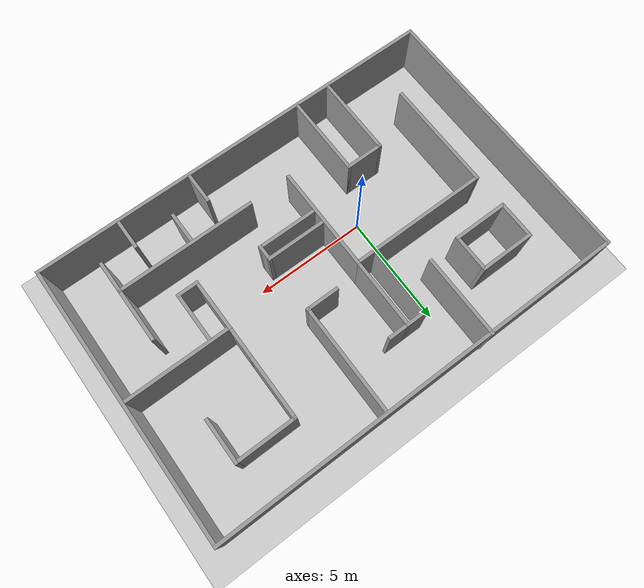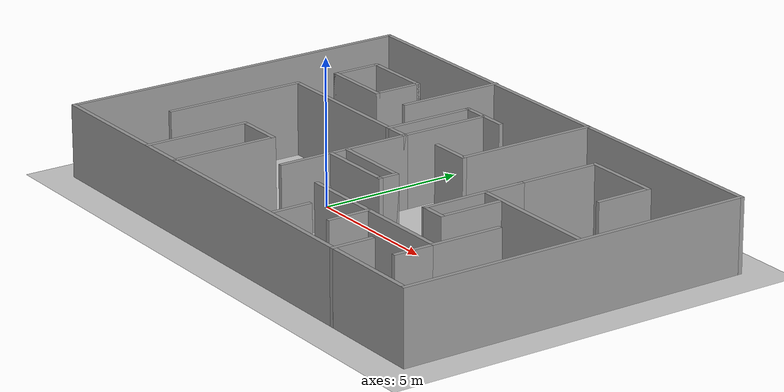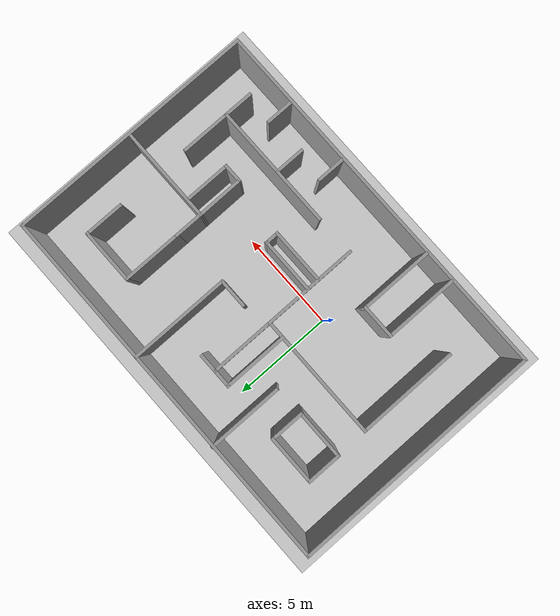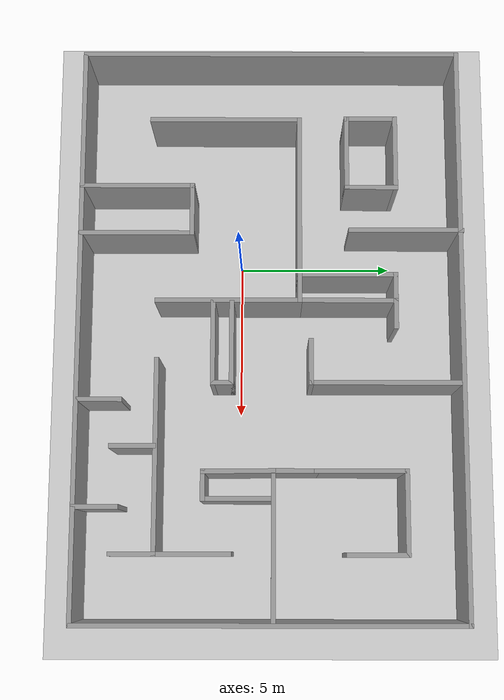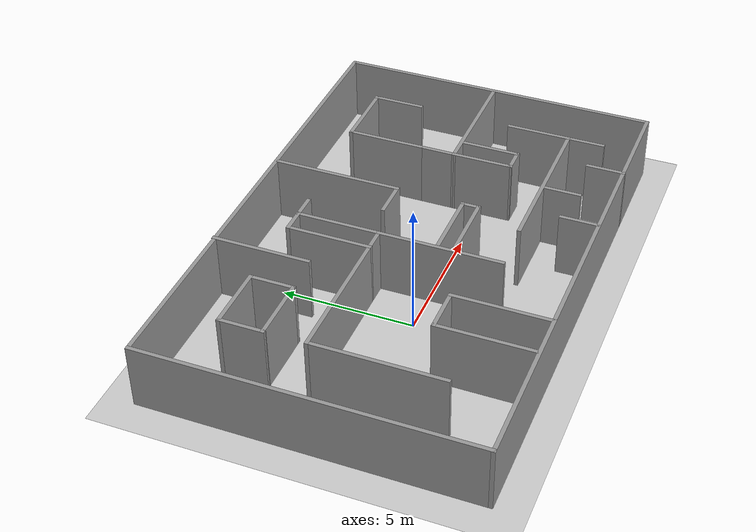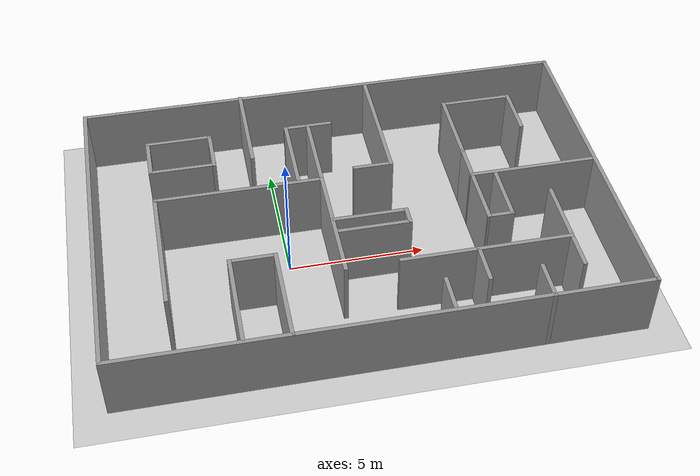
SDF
<?xml version="1.0" ?>
<sdf version="1.4">
    <world name="default">
        <include>
            <uri>model://ground_plane</uri>
        </include>
        <include>
            <uri>model://sun</uri>
        </include>
        <include>
            <uri>file://map/model.sdf</uri>
        </include>
    </world>
</sdf>

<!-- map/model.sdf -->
<sdf version='1.6'>
  <model name='map'>
    <pose frame=''>2.46667 0.989916 0 0 -0 0</pose>
    <link name='Wall_100'>
      <collision name='Wall_100_Collision'>
        <geometry>
          <box>
            <size>4.75 0.15 2.5</size>
          </box>
        </geometry>
        <pose frame=''>0 0 1.25 0 -0 0</pose>
      </collision>
      <visual name='Wall_100_Visual'>
        <pose frame=''>0 0 1.25 0 -0 0</pose>
        <geometry>
          <box>
            <size>4.75 0.15 2.5</size>
          </box>
        </geometry>
        <material>
          <script>
            <uri>file://media/materials/scripts/gazebo.material</uri>
            <name>Gazebo/Grey</name>
          </script>
          <ambient>1 1 1 1</ambient>
        </material>
        <meta>
          <layer>0</layer>
        </meta>
      </visual>
      <pose frame=''>-0.90775 -1.37557 0 0 -0 -1.5708</pose>
    </link>
    <link name='Wall_104'>
      <collision name='Wall_104_Collision'>
        <geometry>
          <box>
            <size>5 0.15 2.5</size>
          </box>
        </geometry>
        <pose frame=''>0 0 1.25 0 -0 0</pose>
      </collision>
      <visual name='Wall_104_Visual'>
        <pose frame=''>0 0 1.25 0 -0 0</pose>
        <geometry>
          <box>
            <size>5 0.15 2.5</size>
          </box>
        </geometry>
        <material>
          <script>
            <uri>file://media/materials/scripts/gazebo.material</uri>
            <name>Gazebo/Grey</name>
          </script>
          <ambient>1 1 1 1</ambient>
        </material>
        <meta>
          <layer>0</layer>
        </meta>
      </visual>
      <pose frame=''>-7.00775 -1.50057 0 0 -0 -1.5708</pose>
    </link>
    <link name='Wall_106'>
      <collision name='Wall_106_Collision'>
        <geometry>
          <box>
            <size>3.75 0.15 2.5</size>
          </box>
        </geometry>
        <pose frame=''>0 0 1.25 0 -0 0</pose>
      </collision>
      <visual name='Wall_106_Visual'>
        <pose frame=''>0 0 1.25 0 -0 0</pose>
        <geometry>
          <box>
            <size>3.75 0.15 2.5</size>
          </box>
        </geometry>
        <material>
          <script>
            <uri>file://media/materials/scripts/gazebo.material</uri>
            <name>Gazebo/Grey</name>
          </script>
          <ambient>1 1 1 1</ambient>
        </material>
        <meta>
          <layer>0</layer>
        </meta>
      </visual>
      <pose frame=''>-4.74227 -4.37831 0 0 -0 1.5708</pose>
    </link>
    <link name='Wall_107'>
      <collision name='Wall_107_Collision'>
        <geometry>
          <box>
            <size>1.75 0.15 2.5</size>
          </box>
        </geometry>
        <pose frame=''>0 0 1.25 0 -0 0</pose>
      </collision>
      <visual name='Wall_107_Visual'>
        <pose frame=''>0 0 1.25 0 -0 0</pose>
        <geometry>
          <box>
            <size>1.75 0.15 2.5</size>
          </box>
        </geometry>
        <material>
          <script>
            <uri>file://media/materials/scripts/gazebo.material</uri>
            <name>Gazebo/Grey</name>
          </script>
          <ambient>1 1 1 1</ambient>
        </material>
        <meta>
          <layer>0</layer>
        </meta>
      </visual>
      <pose frame=''>-3.94227 -2.57831 0 0 -0 0</pose>
    </link>
    <link name='Wall_108'>
      <collision name='Wall_108_Collision'>
        <geometry>
          <box>
            <size>3.75 0.15 2.5</size>
          </box>
        </geometry>
        <pose frame=''>0 0 1.25 0 -0 0</pose>
      </collision>
      <visual name='Wall_108_Visual'>
        <pose frame=''>0 0 1.25 0 -0 0</pose>
        <geometry>
          <box>
            <size>3.75 0.15 2.5</size>
          </box>
        </geometry>
        <material>
          <script>
            <uri>file://media/materials/scripts/gazebo.material</uri>
            <name>Gazebo/Grey</name>
          </script>
          <ambient>1 1 1 1</ambient>
        </material>
        <meta>
          <layer>0</layer>
        </meta>
      </visual>
      <pose frame=''>-3.14227 -4.37831 0 0 -0 -1.5708</pose>
    </link>
    <link name='Wall_110'>
      <collision name='Wall_110_Collision'>
        <geometry>
          <box>
            <size>6.25 0.15 2.5</size>
          </box>
        </geometry>
        <pose frame=''>0 0 1.25 0 -0 0</pose>
      </collision>
      <visual name='Wall_110_Visual'>
        <pose frame=''>0 0 1.25 0 -0 0</pose>
        <geometry>
          <box>
            <size>6.25 0.15 2.5</size>
          </box>
        </geometry>
        <material>
          <script>
            <uri>file://media/materials/scripts/gazebo.material</uri>
            <name>Gazebo/Grey</name>
          </script>
          <ambient>1 1 1 1</ambient>
        </material>
        <meta>
          <layer>0</layer>
        </meta>
      </visual>
      <pose frame=''>4.08628 -3.64881 0 0 -0 0</pose>
    </link>
    <link name='Wall_111'>
      <collision name='Wall_111_Collision'>
        <geometry>
          <box>
            <size>2.5 0.15 2.5</size>
          </box>
        </geometry>
        <pose frame=''>0 0 1.25 0 -0 0</pose>
      </collision>
      <visual name='Wall_111_Visual'>
        <pose frame=''>0 0 1.25 0 -0 0</pose>
        <geometry>
          <box>
            <size>2.5 0.15 2.5</size>
          </box>
        </geometry>
        <material>
          <script>
            <uri>file://media/materials/scripts/gazebo.material</uri>
            <name>Gazebo/Grey</name>
          </script>
          <ambient>1 1 1 1</ambient>
        </material>
        <meta>
          <layer>0</layer>
        </meta>
      </visual>
      <pose frame=''>7.13628 -2.47381 0 0 -0 1.5708</pose>
    </link>
    <link name='Wall_114'>
      <collision name='Wall_114_Collision'>
        <geometry>
          <box>
            <size>2.75 0.15 2.5</size>
          </box>
        </geometry>
        <pose frame=''>0 0 1.25 0 -0 0</pose>
      </collision>
      <visual name='Wall_114_Visual'>
        <pose frame=''>0 0 1.25 0 -0 0</pose>
        <geometry>
          <box>
            <size>2.75 0.15 2.5</size>
          </box>
        </geometry>
        <material>
          <script>
            <uri>file://media/materials/scripts/gazebo.material</uri>
            <name>Gazebo/Grey</name>
          </script>
          <ambient>1 1 1 1</ambient>
        </material>
        <meta>
          <layer>0</layer>
        </meta>
      </visual>
      <pose frame=''>5.8629 4.28354 0 0 -0 3.14159</pose>
    </link>
    <link name='Wall_115'>
      <collision name='Wall_115_Collision'>
        <geometry>
          <box>
            <size>3 0.15 2.5</size>
          </box>
        </geometry>
        <pose frame=''>0 0 1.25 0 -0 0</pose>
      </collision>
      <visual name='Wall_115_Visual'>
        <pose frame=''>0 0 1.25 0 -0 0</pose>
        <geometry>
          <box>
            <size>3 0.15 2.5</size>
          </box>
        </geometry>
        <material>
          <script>
            <uri>file://media/materials/scripts/gazebo.material</uri>
            <name>Gazebo/Grey</name>
          </script>
          <ambient>1 1 1 1</ambient>
        </material>
        <meta>
          <layer>0</layer>
        </meta>
      </visual>
      <pose frame=''>4.5629 2.85854 0 0 -0 -1.5708</pose>
    </link>
    <link name='Wall_120'>
      <collision name='Wall_120_Collision'>
        <geometry>
          <box>
            <size>5 0.15 2.5</size>
          </box>
        </geometry>
        <pose frame=''>0 0 1.25 0 -0 0</pose>
      </collision>
      <visual name='Wall_120_Visual'>
        <pose frame=''>0 0 1.25 0 -0 0</pose>
        <geometry>
          <box>
            <size>5 0.15 2.5</size>
          </box>
        </geometry>
        <material>
          <script>
            <uri>file://media/materials/scripts/gazebo.material</uri>
            <name>Gazebo/Grey</name>
          </script>
          <ambient>1 1 1 1</ambient>
        </material>
        <meta>
          <layer>0</layer>
        </meta>
      </visual>
      <pose frame=''>1.76613 3.70746 0 0 -0 -1.5708</pose>
    </link>
    <link name='Wall_122'>
      <collision name='Wall_122_Collision'>
        <geometry>
          <box>
            <size>3.25 0.15 2.5</size>
          </box>
        </geometry>
        <pose frame=''>0 0 1.25 0 -0 0</pose>
      </collision>
      <visual name='Wall_122_Visual'>
        <pose frame=''>0 0 1.25 0 -0 0</pose>
        <geometry>
          <box>
            <size>3.25 0.15 2.5</size>
          </box>
        </geometry>
        <material>
          <script>
            <uri>file://media/materials/scripts/gazebo.material</uri>
            <name>Gazebo/Grey</name>
          </script>
          <ambient>1 1 1 1</ambient>
        </material>
        <meta>
          <layer>0</layer>
        </meta>
      </visual>
      <pose frame=''>-0.90775 2.47443 0 0 -0 1.5708</pose>
    </link>
    <link name='Wall_123'>
      <collision name='Wall_123_Collision'>
        <geometry>
          <box>
            <size>1 0.15 2.5</size>
          </box>
        </geometry>
        <pose frame=''>0 0 1.25 0 -0 0</pose>
      </collision>
      <visual name='Wall_123_Visual'>
        <pose frame=''>0 0 1.25 0 -0 0</pose>
        <geometry>
          <box>
            <size>1 0.15 2.5</size>
          </box>
        </geometry>
        <material>
          <script>
            <uri>file://media/materials/scripts/gazebo.material</uri>
            <name>Gazebo/Grey</name>
          </script>
          <ambient>1 1 1 1</ambient>
        </material>
        <meta>
          <layer>0</layer>
        </meta>
      </visual>
      <pose frame=''>-1.33275 4.02443 0 0 -0 3.14159</pose>
    </link>
    <link name='Wall_124'>
      <collision name='Wall_124_Collision'>
        <geometry>
          <box>
            <size>3.25 0.15 2.5</size>
          </box>
        </geometry>
        <pose frame=''>0 0 1.25 0 -0 0</pose>
      </collision>
      <visual name='Wall_124_Visual'>
        <pose frame=''>0 0 1.25 0 -0 0</pose>
        <geometry>
          <box>
            <size>3.25 0.15 2.5</size>
          </box>
        </geometry>
        <material>
          <script>
            <uri>file://media/materials/scripts/gazebo.material</uri>
            <name>Gazebo/Grey</name>
          </script>
          <ambient>1 1 1 1</ambient>
        </material>
        <meta>
          <layer>0</layer>
        </meta>
      </visual>
      <pose frame=''>-1.75775 2.47443 0 0 -0 -1.5708</pose>
    </link>
    <link name='Wall_126'>
      <collision name='Wall_126_Collision'>
        <geometry>
          <box>
            <size>1.5 0.15 2.5</size>
          </box>
        </geometry>
        <pose frame=''>0 0 1.25 0 -0 0</pose>
      </collision>
      <visual name='Wall_126_Visual'>
        <pose frame=''>0 0 1.25 0 -0 0</pose>
        <geometry>
          <box>
            <size>1.5 0.15 2.5</size>
          </box>
        </geometry>
        <material>
          <script>
            <uri>file://media/materials/scripts/gazebo.material</uri>
            <name>Gazebo/Grey</name>
          </script>
          <ambient>1 1 1 1</ambient>
        </material>
        <meta>
          <layer>0</layer>
        </meta>
      </visual>
      <pose frame=''>2.30682 -5.484 0 0 -0 1.5708</pose>
    </link>
    <link name='Wall_129'>
      <collision name='Wall_129_Collision'>
        <geometry>
          <box>
            <size>1.5 0.15 2.5</size>
          </box>
        </geometry>
        <pose frame=''>0 0 1.25 0 -0 0</pose>
      </collision>
      <visual name='Wall_129_Visual'>
        <pose frame=''>0 0 1.25 0 -0 0</pose>
        <geometry>
          <box>
            <size>1.5 0.15 2.5</size>
          </box>
        </geometry>
        <material>
          <script>
            <uri>file://media/materials/scripts/gazebo.material</uri>
            <name>Gazebo/Grey</name>
          </script>
          <ambient>1 1 1 1</ambient>
        </material>
        <meta>
          <layer>0</layer>
        </meta>
      </visual>
      <pose frame=''>7.13628 -4.32381 0 0 -0 -1.5708</pose>
    </link>
    <link name='Wall_131'>
      <collision name='Wall_131_Collision'>
        <geometry>
          <box>
            <size>1.5 0.15 2.5</size>
          </box>
        </geometry>
        <pose frame=''>0 0 1.25 0 -0 0</pose>
      </collision>
      <visual name='Wall_131_Visual'>
        <pose frame=''>0 0 1.25 0 -0 0</pose>
        <geometry>
          <box>
            <size>1.5 0.15 2.5</size>
          </box>
        </geometry>
        <material>
          <script>
            <uri>file://media/materials/scripts/gazebo.material</uri>
            <name>Gazebo/Grey</name>
          </script>
          <ambient>1 1 1 1</ambient>
        </material>
        <meta>
          <layer>0</layer>
        </meta>
      </visual>
      <pose frame=''>3.78432 -4.37149 0 0 -0 -1.5708</pose>
    </link>
    <link name='Wall_133'>
      <collision name='Wall_133_Collision'>
        <geometry>
          <box>
            <size>1.5 0.15 2.5</size>
          </box>
        </geometry>
        <pose frame=''>0 0 1.25 0 -0 0</pose>
      </collision>
      <visual name='Wall_133_Visual'>
        <pose frame=''>0 0 1.25 0 -0 0</pose>
        <geometry>
          <box>
            <size>1.5 0.15 2.5</size>
          </box>
        </geometry>
        <material>
          <script>
            <uri>file://media/materials/scripts/gazebo.material</uri>
            <name>Gazebo/Grey</name>
          </script>
          <ambient>1 1 1 1</ambient>
        </material>
        <meta>
          <layer>0</layer>
        </meta>
      </visual>
      <pose frame=''>5.68398 -5.51918 0 0 -0 1.5708</pose>
    </link>
    <link name='Wall_135'>
      <collision name='Wall_135_Collision'>
        <geometry>
          <box>
            <size>3.75 0.15 2.5</size>
          </box>
        </geometry>
        <pose frame=''>0 0 1.25 0 -0 0</pose>
      </collision>
      <visual name='Wall_135_Visual'>
        <pose frame=''>0 0 1.25 0 -0 0</pose>
        <geometry>
          <box>
            <size>3.75 0.15 2.5</size>
          </box>
        </geometry>
        <material>
          <script>
            <uri>file://media/materials/scripts/gazebo.material</uri>
            <name>Gazebo/Grey</name>
          </script>
          <ambient>1 1 1 1</ambient>
        </material>
        <meta>
          <layer>0</layer>
        </meta>
      </visual>
      <pose frame=''>-3.24065 4.39418 0 0 -0 -1.5708</pose>
    </link>
    <link name='Wall_137'>
      <collision name='Wall_137_Collision'>
        <geometry>
          <box>
            <size>1 0.15 2.5</size>
          </box>
        </geometry>
        <pose frame=''>0 0 1.25 0 -0 0</pose>
      </collision>
      <visual name='Wall_137_Visual'>
        <pose frame=''>0 0 1.25 0 -0 0</pose>
        <geometry>
          <box>
            <size>1 0.15 2.5</size>
          </box>
        </geometry>
        <material>
          <script>
            <uri>file://media/materials/scripts/gazebo.material</uri>
            <name>Gazebo/Grey</name>
          </script>
          <ambient>1 1 1 1</ambient>
        </material>
        <meta>
          <layer>0</layer>
        </meta>
      </visual>
      <pose frame=''>-0.48275 4.02443 0 0 -0 0</pose>
    </link>
    <link name='Wall_139'>
      <collision name='Wall_139_Collision'>
        <geometry>
          <box>
            <size>1.5 0.15 2.5</size>
          </box>
        </geometry>
        <pose frame=''>0 0 1.25 0 -0 0</pose>
      </collision>
      <visual name='Wall_139_Visual'>
        <pose frame=''>0 0 1.25 0 -0 0</pose>
        <geometry>
          <box>
            <size>1.5 0.15 2.5</size>
          </box>
        </geometry>
        <material>
          <script>
            <uri>file://media/materials/scripts/gazebo.material</uri>
            <name>Gazebo/Grey</name>
          </script>
          <ambient>1 1 1 1</ambient>
        </material>
        <meta>
          <layer>0</layer>
        </meta>
      </visual>
      <pose frame=''>1.09113 1.28246 0 0 -0 3.14159</pose>
    </link>
    <link name='Wall_150'>
      <collision name='Wall_150_Collision'>
        <geometry>
          <box>
            <size>1 0.15 2.5</size>
          </box>
        </geometry>
        <pose frame=''>0 0 1.25 0 -0 0</pose>
      </collision>
      <visual name='Wall_150_Visual'>
        <pose frame=''>0 0 1.25 0 -0 0</pose>
        <geometry>
          <box>
            <size>1 0.15 2.5</size>
          </box>
        </geometry>
        <material>
          <script>
            <uri>file://media/materials/scripts/gazebo.material</uri>
            <name>Gazebo/Grey</name>
          </script>
          <ambient>1 1 1 1</ambient>
        </material>
        <meta>
          <layer>0</layer>
        </meta>
      </visual>
      <pose frame=''>5.00437 -2.14348 0 0 -0 3.14159</pose>
    </link>
    <link name='Wall_153'>
      <collision name='Wall_153_Collision'>
        <geometry>
          <box>
            <size>0.75 0.15 2.5</size>
          </box>
        </geometry>
        <pose frame=''>0 0 1.25 0 -0 0</pose>
      </collision>
      <visual name='Wall_153_Visual'>
        <pose frame=''>0 0 1.25 0 -0 0</pose>
        <geometry>
          <box>
            <size>0.75 0.15 2.5</size>
          </box>
        </geometry>
        <material>
          <script>
            <uri>file://media/materials/scripts/gazebo.material</uri>
            <name>Gazebo/Grey</name>
          </script>
          <ambient>1 1 1 1</ambient>
        </material>
        <meta>
          <layer>0</layer>
        </meta>
      </visual>
      <pose frame=''>1.76507 -1.56289 0 0 -0 -1.5708</pose>
    </link>
    <link name='Wall_154'>
      <collision name='Wall_154_Collision'>
        <geometry>
          <box>
            <size>2.75 0.15 2.5</size>
          </box>
        </geometry>
        <pose frame=''>0 0 1.25 0 -0 0</pose>
      </collision>
      <visual name='Wall_154_Visual'>
        <pose frame=''>0 0 1.25 0 -0 0</pose>
        <geometry>
          <box>
            <size>2.75 0.15 2.5</size>
          </box>
        </geometry>
        <material>
          <script>
            <uri>file://media/materials/scripts/gazebo.material</uri>
            <name>Gazebo/Grey</name>
          </script>
          <ambient>1 1 1 1</ambient>
        </material>
        <meta>
          <layer>0</layer>
        </meta>
      </visual>
      <pose frame=''>0.465071 -1.86289 0 0 -0 3.14159</pose>
    </link>
    <link name='Wall_156'>
      <collision name='Wall_156_Collision'>
        <geometry>
          <box>
            <size>2.75 0.15 2.5</size>
          </box>
        </geometry>
        <pose frame=''>0 0 1.25 0 -0 0</pose>
      </collision>
      <visual name='Wall_156_Visual'>
        <pose frame=''>0 0 1.25 0 -0 0</pose>
        <geometry>
          <box>
            <size>2.75 0.15 2.5</size>
          </box>
        </geometry>
        <material>
          <script>
            <uri>file://media/materials/scripts/gazebo.material</uri>
            <name>Gazebo/Grey</name>
          </script>
          <ambient>1 1 1 1</ambient>
        </material>
        <meta>
          <layer>0</layer>
        </meta>
      </visual>
      <pose frame=''>0.465071 -1.26289 0 0 -0 3.14159</pose>
    </link>
    <link name='Wall_162'>
      <collision name='Wall_162_Collision'>
        <geometry>
          <box>
            <size>1.5 0.15 2.5</size>
          </box>
        </geometry>
        <pose frame=''>0 0 1.25 0 -0 0</pose>
      </collision>
      <visual name='Wall_162_Visual'>
        <pose frame=''>0 0 1.25 0 -0 0</pose>
        <geometry>
          <box>
            <size>1.5 0.15 2.5</size>
          </box>
        </geometry>
        <material>
          <script>
            <uri>file://media/materials/scripts/gazebo.material</uri>
            <name>Gazebo/Grey</name>
          </script>
          <ambient>1 1 1 1</ambient>
        </material>
        <meta>
          <layer>0</layer>
        </meta>
      </visual>
      <pose frame=''>4.5629 0.758543 0 0 -0 -1.5708</pose>
    </link>
    <link name='Wall_163'>
      <collision name='Wall_163_Collision'>
        <geometry>
          <box>
            <size>4.75 0.15 2.5</size>
          </box>
        </geometry>
        <pose frame=''>0 0 1.25 0 -0 0</pose>
      </collision>
      <visual name='Wall_163_Visual'>
        <pose frame=''>0 0 1.25 0 -0 0</pose>
        <geometry>
          <box>
            <size>4.75 0.15 2.5</size>
          </box>
        </geometry>
        <material>
          <script>
            <uri>file://media/materials/scripts/gazebo.material</uri>
            <name>Gazebo/Grey</name>
          </script>
          <ambient>1 1 1 1</ambient>
        </material>
        <meta>
          <layer>0</layer>
        </meta>
      </visual>
      <pose frame=''>6.8629 0.083543 0 0 -0 0</pose>
    </link>
    <link name='Wall_165'>
      <collision name='Wall_165_Collision'>
        <geometry>
          <box>
            <size>2 0.15 2.5</size>
          </box>
        </geometry>
        <pose frame=''>0 0 1.25 0 -0 0</pose>
      </collision>
      <visual name='Wall_165_Visual'>
        <pose frame=''>0 0 1.25 0 -0 0</pose>
        <geometry>
          <box>
            <size>2 0.15 2.5</size>
          </box>
        </geometry>
        <material>
          <script>
            <uri>file://media/materials/scripts/gazebo.material</uri>
            <name>Gazebo/Grey</name>
          </script>
          <ambient>1 1 1 1</ambient>
        </material>
        <meta>
          <layer>0</layer>
        </meta>
      </visual>
      <pose frame=''>7.1629 3.35854 0 0 -0 -1.5708</pose>
    </link>
    <link name='Wall_167'>
      <collision name='Wall_167_Collision'>
        <geometry>
          <box>
            <size>2.37709 0.15 2.5</size>
          </box>
        </geometry>
        <pose frame=''>0 0 1.25 0 -0 0</pose>
      </collision>
      <visual name='Wall_167_Visual'>
        <pose frame=''>0 0 1.25 0 -0 0</pose>
        <geometry>
          <box>
            <size>2.37709 0.15 2.5</size>
          </box>
        </geometry>
        <material>
          <script>
            <uri>file://media/materials/scripts/gazebo.material</uri>
            <name>Gazebo/Grey</name>
          </script>
          <ambient>1 1 1 1</ambient>
        </material>
        <meta>
          <layer>0</layer>
        </meta>
      </visual>
      <pose frame=''>4.57114 -1.02997 0 0 -0 1.57819</pose>
    </link>
    <link name='Wall_169'>
      <collision name='Wall_169_Collision'>
        <geometry>
          <box>
            <size>2.25 0.15 2.5</size>
          </box>
        </geometry>
        <pose frame=''>0 0 1.25 0 -0 0</pose>
      </collision>
      <visual name='Wall_169_Visual'>
        <pose frame=''>0 0 1.25 0 -0 0</pose>
        <geometry>
          <box>
            <size>2.25 0.15 2.5</size>
          </box>
        </geometry>
        <material>
          <script>
            <uri>file://media/materials/scripts/gazebo.material</uri>
            <name>Gazebo/Grey</name>
          </script>
          <ambient>1 1 1 1</ambient>
        </material>
        <meta>
          <layer>0</layer>
        </meta>
      </visual>
      <pose frame=''>5.42937 -1.09348 0 0 -0 1.5708</pose>
    </link>
    <link name='Wall_86'>
      <collision name='Wall_86_Collision'>
        <geometry>
          <box>
            <size>12.5 0.15 2.5</size>
          </box>
        </geometry>
        <pose frame=''>0 0 1.25 0 -0 0</pose>
      </collision>
      <visual name='Wall_86_Visual'>
        <pose frame=''>0 0 1.25 0 -0 0</pose>
        <geometry>
          <box>
            <size>12.5 0.15 2.5</size>
          </box>
        </geometry>
        <material>
          <script>
            <uri>file://media/materials/scripts/gazebo.material</uri>
            <name>Gazebo/Grey</name>
          </script>
          <ambient>1 1 1 1</ambient>
        </material>
        <meta>
          <layer>0</layer>
        </meta>
      </visual>
      <pose frame=''>-9.3 -0.017465 0 0 -0 1.5708</pose>
    </link>
    <link name='Wall_87'>
      <collision name='Wall_87_Collision'>
        <geometry>
          <box>
            <size>18.75 0.15 2.5</size>
          </box>
        </geometry>
        <pose frame=''>0 0 1.25 0 -0 0</pose>
      </collision>
      <visual name='Wall_87_Visual'>
        <pose frame=''>0 0 1.25 0 -0 0</pose>
        <geometry>
          <box>
            <size>18.75 0.15 2.5</size>
          </box>
        </geometry>
        <material>
          <script>
            <uri>file://media/materials/scripts/gazebo.material</uri>
            <name>Gazebo/Grey</name>
          </script>
          <ambient>1 1 1 1</ambient>
        </material>
        <meta>
          <layer>0</layer>
        </meta>
      </visual>
      <pose frame=''>0 6.15754 0 0 -0 0</pose>
    </link>
    <link name='Wall_91'>
      <collision name='Wall_91_Collision'>
        <geometry>
          <box>
            <size>18.75 0.15 2.5</size>
          </box>
        </geometry>
        <pose frame=''>0 0 1.25 0 -0 0</pose>
      </collision>
      <visual name='Wall_91_Visual'>
        <pose frame=''>0 0 1.25 0 -0 0</pose>
        <geometry>
          <box>
            <size>18.75 0.15 2.5</size>
          </box>
        </geometry>
        <material>
          <script>
            <uri>file://media/materials/scripts/gazebo.material</uri>
            <name>Gazebo/Grey</name>
          </script>
          <ambient>1 1 1 1</ambient>
        </material>
        <meta>
          <layer>0</layer>
        </meta>
      </visual>
      <pose frame=''>0 -6.19247 0 0 -0 0</pose>
    </link>
    <link name='Wall_92'>
      <collision name='Wall_92_Collision'>
        <geometry>
          <box>
            <size>12.5 0.15 2.5</size>
          </box>
        </geometry>
        <pose frame=''>0 0 1.25 0 -0 0</pose>
      </collision>
      <visual name='Wall_92_Visual'>
        <pose frame=''>0 0 1.25 0 -0 0</pose>
        <geometry>
          <box>
            <size>12.5 0.15 2.5</size>
          </box>
        </geometry>
        <material>
          <script>
            <uri>file://media/materials/scripts/gazebo.material</uri>
            <name>Gazebo/Grey</name>
          </script>
          <ambient>1 1 1 1</ambient>
        </material>
        <meta>
          <layer>0</layer>
        </meta>
      </visual>
      <pose frame=''>9.3 -0.017465 0 0 -0 1.5708</pose>
    </link>
    <link name='Wall_94'>
      <collision name='Wall_94_Collision'>
        <geometry>
          <box>
            <size>1.75 0.15 2.5</size>
          </box>
        </geometry>
        <pose frame=''>0 0 1.25 0 -0 0</pose>
      </collision>
      <visual name='Wall_94_Visual'>
        <pose frame=''>0 0 1.25 0 -0 0</pose>
        <geometry>
          <box>
            <size>1.75 0.15 2.5</size>
          </box>
        </geometry>
        <material>
          <script>
            <uri>file://media/materials/scripts/gazebo.material</uri>
            <name>Gazebo/Grey</name>
          </script>
          <ambient>1 1 1 1</ambient>
        </material>
        <meta>
          <layer>0</layer>
        </meta>
      </visual>
      <pose frame=''>-7.03834 3.27522 0 0 -0 -1.5708</pose>
    </link>
    <link name='Wall_95'>
      <collision name='Wall_95_Collision'>
        <geometry>
          <box>
            <size>2.5 0.15 2.5</size>
          </box>
        </geometry>
        <pose frame=''>0 0 1.25 0 -0 0</pose>
      </collision>
      <visual name='Wall_95_Visual'>
        <pose frame=''>0 0 1.25 0 -0 0</pose>
        <geometry>
          <box>
            <size>2.5 0.15 2.5</size>
          </box>
        </geometry>
        <material>
          <script>
            <uri>file://media/materials/scripts/gazebo.material</uri>
            <name>Gazebo/Grey</name>
          </script>
          <ambient>1 1 1 1</ambient>
        </material>
        <meta>
          <layer>0</layer>
        </meta>
      </visual>
      <pose frame=''>-5.86334 2.47522 0 0 -0 0</pose>
    </link>
    <link name='Wall_96'>
      <collision name='Wall_96_Collision'>
        <geometry>
          <box>
            <size>1.75 0.15 2.5</size>
          </box>
        </geometry>
        <pose frame=''>0 0 1.25 0 -0 0</pose>
      </collision>
      <visual name='Wall_96_Visual'>
        <pose frame=''>0 0 1.25 0 -0 0</pose>
        <geometry>
          <box>
            <size>1.75 0.15 2.5</size>
          </box>
        </geometry>
        <material>
          <script>
            <uri>file://media/materials/scripts/gazebo.material</uri>
            <name>Gazebo/Grey</name>
          </script>
          <ambient>1 1 1 1</ambient>
        </material>
        <meta>
          <layer>0</layer>
        </meta>
      </visual>
      <pose frame=''>-4.68834 3.27522 0 0 -0 1.5708</pose>
    </link>
    <link name='Wall_97'>
      <collision name='Wall_97_Collision'>
        <geometry>
          <box>
            <size>2.5 0.15 2.5</size>
          </box>
        </geometry>
        <pose frame=''>0 0 1.25 0 -0 0</pose>
      </collision>
      <visual name='Wall_97_Visual'>
        <pose frame=''>0 0 1.25 0 -0 0</pose>
        <geometry>
          <box>
            <size>2.5 0.15 2.5</size>
          </box>
        </geometry>
        <material>
          <script>
            <uri>file://media/materials/scripts/gazebo.material</uri>
            <name>Gazebo/Grey</name>
          </script>
          <ambient>1 1 1 1</ambient>
        </material>
        <meta>
          <layer>0</layer>
        </meta>
      </visual>
      <pose frame=''>-5.86334 4.07522 0 0 -0 3.14159</pose>
    </link>
    <link name='Wall_99'>
      <collision name='Wall_99_Collision'>
        <geometry>
          <box>
            <size>6.25 0.15 2.5</size>
          </box>
        </geometry>
        <pose frame=''>0 0 1.25 0 -0 0</pose>
      </collision>
      <visual name='Wall_99_Visual'>
        <pose frame=''>0 0 1.25 0 -0 0</pose>
        <geometry>
          <box>
            <size>6.25 0.15 2.5</size>
          </box>
        </geometry>
        <material>
          <script>
            <uri>file://media/materials/scripts/gazebo.material</uri>
            <name>Gazebo/Grey</name>
          </script>
          <ambient>1 1 1 1</ambient>
        </material>
        <meta>
          <layer>0</layer>
        </meta>
      </visual>
      <pose frame=''>-3.95775 0.92443 0 0 -0 0</pose>
    </link>
    <static>1</static>
  </model>
</sdf>
